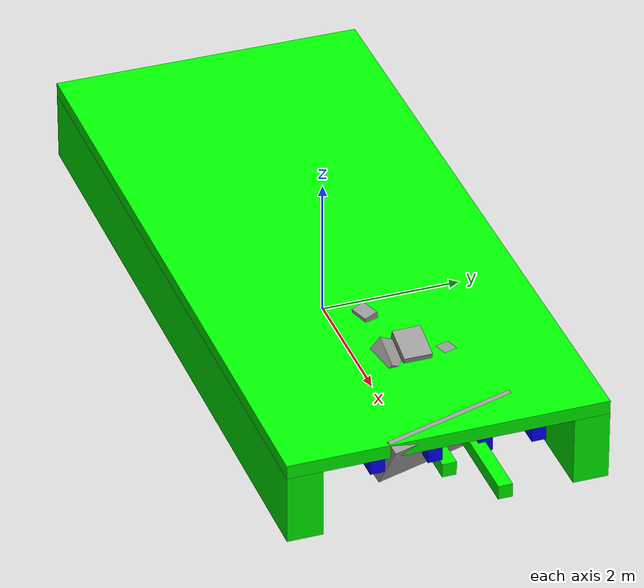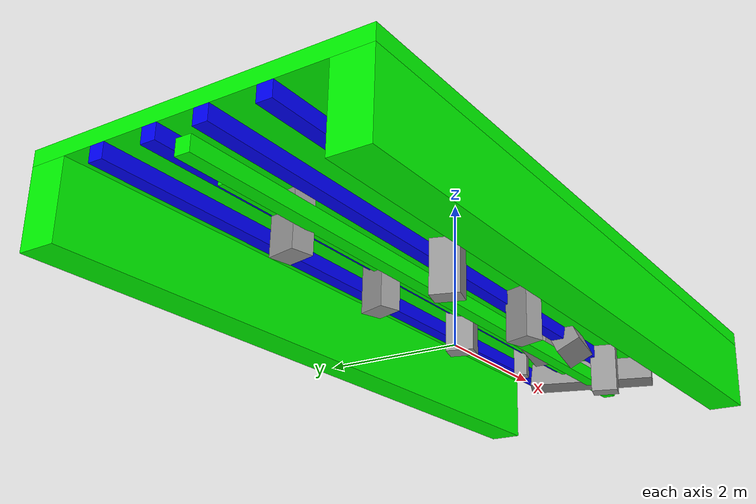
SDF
<?xml version='1.0'?>
<sdf version='1.7'>
  <model name='very_low_portal_with_obstacles'>
    <link name='link_0'>
      <inertial>
        <mass>1</mass>
        <inertia>
          <ixx>0.166667</ixx>
          <ixy>0</ixy>
          <ixz>0</ixz>
          <iyy>0.166667</iyy>
          <iyz>0</iyz>
          <izz>0.166667</izz>
        </inertia>
        <pose>0 0 0 0 -0 0</pose>
      </inertial>
      <pose>0 0 0 0 -0 0</pose>
      <gravity>1</gravity>
      <self_collide>0</self_collide>
      <kinematic>0</kinematic>
      <enable_wind>0</enable_wind>
      <visual name='ModelPreview_1::link_0::visual_9'>
        <pose>-1 0.5 0.8 0 -0 0</pose>
        <geometry>
          <box>
            <size>0 0 0</size>
          </box>
        </geometry>
        <material>
          <lighting>1</lighting>
          <script>
            <uri>file://media/materials/scripts/gazebo.material</uri>
            <name>Gazebo/Grey</name>
          </script>
          <shader type='pixel'>
            <normal_map>__default__</normal_map>
          </shader>
          <ambient>0 1 0 1</ambient>
          <diffuse>0.7 0.7 0.7 1</diffuse>
          <specular>0.01 0.01 0.01 1</specular>
          <emissive>0 0 0 1</emissive>
        </material>
        <transparency>0</transparency>
        <cast_shadows>1</cast_shadows>
      </visual>
      <visual name='ModelPreview_1::link_0::visual_8'>
        <pose>1 0.4 0.85 0 -0 0</pose>
        <geometry>
          <box>
            <size>10 0.2 0.2</size>
          </box>
        </geometry>
        <material>
          <lighting>1</lighting>
          <script>
            <uri>file://media/materials/scripts/gazebo.material</uri>
            <name>Gazebo/Grey</name>
          </script>
          <shader type='pixel'>
            <normal_map>__default__</normal_map>
          </shader>
          <ambient>0 1 0 1</ambient>
          <diffuse>0.7 0.7 0.7 1</diffuse>
          <specular>0.01 0.01 0.01 1</specular>
          <emissive>0 0 0 1</emissive>
        </material>
        <transparency>0</transparency>
        <cast_shadows>1</cast_shadows>
      </visual>
      <visual name='ModelPreview_1::link_0::visual_7'>
        <pose>0 0 0.625 0 -0 0</pose>
        <geometry>
          <box>
            <size>10 0.2 0.2</size>
          </box>
        </geometry>
        <material>
          <lighting>1</lighting>
          <script>
            <uri>file://media/materials/scripts/gazebo.material</uri>
            <name>Gazebo/Grey</name>
          </script>
          <shader type='pixel'>
            <normal_map>__default__</normal_map>
          </shader>
          <ambient>0 1 0 1</ambient>
          <diffuse>0.7 0.7 0.7 1</diffuse>
          <specular>0.01 0.01 0.01 1</specular>
          <emissive>0 0 0 1</emissive>
        </material>
        <transparency>0</transparency>
        <cast_shadows>1</cast_shadows>
      </visual>
      <visual name='visual'>
        <pose>0 2 0.5 0 -0 0</pose>
        <geometry>
          <box>
            <size>10 0.5 1</size>
          </box>
        </geometry>
        <material>
          <lighting>1</lighting>
          <script>
            <uri>file://media/materials/scripts/gazebo.material</uri>
            <name>Gazebo/Grey</name>
          </script>
          <shader type='pixel'>
            <normal_map>__default__</normal_map>
          </shader>
          <ambient>0 1 0 1</ambient>
          <diffuse>0.7 0.7 0.7 1</diffuse>
          <specular>0.01 0.01 0.01 1</specular>
          <emissive>0 0 0 1</emissive>
        </material>
        <transparency>0</transparency>
        <cast_shadows>1</cast_shadows>
      </visual>
      <visual name='ModelPreview_2::link_0::visual_7'>
        <pose>0 0.5 0.9 0 -0 0</pose>
        <geometry>
          <box>
            <size>10 0.2 0.2</size>
          </box>
        </geometry>
        <material>
          <lighting>1</lighting>
          <script>
            <uri>file://media/materials/scripts/gazebo.material</uri>
            <name>Gazebo/Grey</name>
          </script>
          <shader type='pixel'>
            <normal_map>__default__</normal_map>
          </shader>
          <ambient>0 0 1 1</ambient>
          <diffuse>0.7 0.7 0.7 1</diffuse>
          <specular>0.01 0.01 0.01 1</specular>
          <emissive>0 0 0 1</emissive>
        </material>
        <transparency>0</transparency>
        <cast_shadows>1</cast_shadows>
      </visual>
      <visual name='ModelPreview_2::link_0::visual_3'>
        <pose>0 1.25 0.9 0 -0 0</pose>
        <geometry>
          <box>
            <size>10 0.2 0.2</size>
          </box>
        </geometry>
        <material>
          <lighting>1</lighting>
          <script>
            <uri>file://media/materials/scripts/gazebo.material</uri>
            <name>Gazebo/Grey</name>
          </script>
          <shader type='pixel'>
            <normal_map>__default__</normal_map>
          </shader>
          <ambient>0 0 1 1</ambient>
          <diffuse>0.7 0.7 0.7 1</diffuse>
          <specular>0.01 0.01 0.01 1</specular>
          <emissive>0 0 0 1</emissive>
        </material>
        <transparency>0</transparency>
        <cast_shadows>1</cast_shadows>
      </visual>
      <visual name='ModelPreview_2::link_0::visual_8'>
        <pose>0 -0.2 0.9 0 -0 0</pose>
        <geometry>
          <box>
            <size>10 0.2 0.2</size>
          </box>
        </geometry>
        <material>
          <lighting>1</lighting>
          <script>
            <uri>file://media/materials/scripts/gazebo.material</uri>
            <name>Gazebo/Grey</name>
          </script>
          <shader type='pixel'>
            <normal_map>__default__</normal_map>
          </shader>
          <ambient>0 0 1 1</ambient>
          <diffuse>0.7 0.7 0.7 1</diffuse>
          <specular>0.01 0.01 0.01 1</specular>
          <emissive>0 0 0 1</emissive>
        </material>
        <transparency>0</transparency>
        <cast_shadows>1</cast_shadows>
      </visual>
      <visual name='ModelPreview_2::link_0::visual_9'>
        <pose>0 -1 0.9 0 -0 0</pose>
        <geometry>
          <box>
            <size>10 0.2 0.2</size>
          </box>
        </geometry>
        <material>
          <lighting>1</lighting>
          <script>
            <uri>file://media/materials/scripts/gazebo.material</uri>
            <name>Gazebo/Grey</name>
          </script>
          <shader type='pixel'>
            <normal_map>__default__</normal_map>
          </shader>
          <ambient>0 0 1 1</ambient>
          <diffuse>0.7 0.7 0.7 1</diffuse>
          <specular>0.01 0.01 0.01 1</specular>
          <emissive>0 0 0 1</emissive>
        </material>
        <transparency>0</transparency>
        <cast_shadows>1</cast_shadows>
      </visual>
      <visual name='ModelPreview_2::link_0::visual_2'>
        <pose>0 0 1.1 0 -0 0</pose>
        <geometry>
          <box>
            <size>10 4.5 0.2</size>
          </box>
        </geometry>
        <material>
          <lighting>1</lighting>
          <script>
            <uri>file://media/materials/scripts/gazebo.material</uri>
            <name>Gazebo/Grey</name>
          </script>
          <shader type='pixel'>
            <normal_map>__default__</normal_map>
          </shader>
          <ambient>0 1 0 1</ambient>
          <diffuse>0.7 0.7 0.7 1</diffuse>
          <specular>0.01 0.01 0.01 1</specular>
          <emissive>0 0 0 1</emissive>
        </material>
        <transparency>0</transparency>
        <cast_shadows>1</cast_shadows>
      </visual>
      <visual name='ModelPreview_2::link_0::visual_1'>
        <pose>0 -2 0.5 0 -0 0</pose>
        <geometry>
          <box>
            <size>10 0.5 1</size>
          </box>
        </geometry>
        <material>
          <lighting>1</lighting>
          <script>
            <uri>file://media/materials/scripts/gazebo.material</uri>
            <name>Gazebo/Grey</name>
          </script>
          <shader type='pixel'>
            <normal_map>__default__</normal_map>
          </shader>
          <ambient>0 1 0 1</ambient>
          <diffuse>0.7 0.7 0.7 1</diffuse>
          <specular>0.01 0.01 0.01 1</specular>
          <emissive>0 0 0 1</emissive>
        </material>
        <transparency>0</transparency>
        <cast_shadows>1</cast_shadows>
      </visual>
    </link>
    <link name='link_0_0'>
      <inertial>
        <mass>1</mass>
        <inertia>
          <ixx>0.166667</ixx>
          <ixy>0</ixy>
          <ixz>0</ixz>
          <iyy>0.166667</iyy>
          <iyz>0</iyz>
          <izz>0.166667</izz>
        </inertia>
        <pose>0 0 0 0 -0 0</pose>
      </inertial>
      <pose>-1 -0.5 0 0 -0 0.3</pose>
      <gravity>1</gravity>
      <self_collide>0</self_collide>
      <kinematic>0</kinematic>
      <enable_wind>0</enable_wind>
      <visual name='visual'>
        <pose>0 0 0.625 0 -0 0</pose>
        <geometry>
          <box>
            <size>0.3 0.4 0.75</size>
          </box>
        </geometry>
        <material>
          <lighting>1</lighting>
          <script>
            <uri>file://media/materials/scripts/gazebo.material</uri>
            <name>Gazebo/Grey</name>
          </script>
          <shader type='pixel'>
            <normal_map>__default__</normal_map>
          </shader>
          <ambient>0.3 0.3 0.3 1</ambient>
          <diffuse>0.7 0.7 0.7 1</diffuse>
          <specular>0.01 0.01 0.01 1</specular>
          <emissive>0 0 0 1</emissive>
        </material>
        <transparency>0</transparency>
        <cast_shadows>1</cast_shadows>
      </visual>
    </link>
    <link name='link_0_0_clone'>
      <inertial>
        <mass>1</mass>
        <inertia>
          <ixx>0.166667</ixx>
          <ixy>0</ixy>
          <ixz>0</ixz>
          <iyy>0.166667</iyy>
          <iyz>0</iyz>
          <izz>0.166667</izz>
        </inertia>
        <pose>0 0 0 0 -0 0</pose>
      </inertial>
      <pose>-1 0.5 0 0 0 -0.3</pose>
      <gravity>0</gravity>
      <self_collide>0</self_collide>
      <kinematic>0</kinematic>
      <enable_wind>0</enable_wind>
      <visual name='visual_0'>
        <pose>0 0 0.625 0 -0 0</pose>
        <geometry>
          <box>
            <size>0.3 0.4 0.75</size>
          </box>
        </geometry>
        <material>
          <lighting>1</lighting>
          <script>
            <uri>file://media/materials/scripts/gazebo.material</uri>
            <name>Gazebo/Grey</name>
          </script>
          <shader type='pixel'>
            <normal_map>__default__</normal_map>
          </shader>
          <ambient>0.3 0.3 0.3 1</ambient>
          <diffuse>0.7 0.7 0.7 1</diffuse>
          <specular>0.01 0.01 0.01 1</specular>
          <emissive>0 0 0 1</emissive>
        </material>
        <transparency>0</transparency>
        <cast_shadows>1</cast_shadows>
      </visual>
    </link>
    <link name='link_0_0_clone_0'>
      <inertial>
        <mass>1</mass>
        <inertia>
          <ixx>0.166667</ixx>
          <ixy>0</ixy>
          <ixz>0</ixz>
          <iyy>0.166667</iyy>
          <iyz>0</iyz>
          <izz>0.166667</izz>
        </inertia>
        <pose>0 0 0 0 -0 0</pose>
      </inertial>
      <pose>1.97204 0.067583 0.3 0.2 -0 0.3</pose>
      <gravity>1</gravity>
      <self_collide>0</self_collide>
      <kinematic>0</kinematic>
      <enable_wind>0</enable_wind>
      <visual name='visual_0'>
        <pose>0 0 0.625 0 -0 0</pose>
        <geometry>
          <box>
            <size>0.3 0.2 0.75</size>
          </box>
        </geometry>
        <material>
          <lighting>1</lighting>
          <script>
            <uri>file://media/materials/scripts/gazebo.material</uri>
            <name>Gazebo/Grey</name>
          </script>
          <shader type='pixel'>
            <normal_map>__default__</normal_map>
          </shader>
          <ambient>0.3 0.3 0.3 1</ambient>
          <diffuse>0.7 0.7 0.7 1</diffuse>
          <specular>0.01 0.01 0.01 1</specular>
          <emissive>0 0 0 1</emissive>
        </material>
        <transparency>0</transparency>
        <cast_shadows>1</cast_shadows>
      </visual>
    </link>
    <link name='link_0_0_clone_0_clone'>
      <inertial>
        <mass>1</mass>
        <inertia>
          <ixx>0.166667</ixx>
          <ixy>0</ixy>
          <ixz>0</ixz>
          <iyy>0.166667</iyy>
          <iyz>0</iyz>
          <izz>0.166667</izz>
        </inertia>
        <pose>0 0 0 0 -0 0</pose>
      </inertial>
      <pose>2.76815 0.185748 0.4 0 0.3 0</pose>
      <gravity>1</gravity>
      <self_collide>0</self_collide>
      <kinematic>0</kinematic>
      <enable_wind>0</enable_wind>
      <visual name='visual_0'>
        <pose>0 0 0.625 0 -0 0</pose>
        <geometry>
          <box>
            <size>0.5 0.4 0.75</size>
          </box>
        </geometry>
        <material>
          <lighting>1</lighting>
          <script>
            <uri>file://media/materials/scripts/gazebo.material</uri>
            <name>Gazebo/Grey</name>
          </script>
          <shader type='pixel'>
            <normal_map>__default__</normal_map>
          </shader>
          <ambient>0.3 0.3 0.3 1</ambient>
          <diffuse>0.7 0.7 0.7 1</diffuse>
          <specular>0.01 0.01 0.01 1</specular>
          <emissive>0 0 0 1</emissive>
        </material>
        <transparency>0</transparency>
        <cast_shadows>1</cast_shadows>
      </visual>
    </link>
    <link name='link_0_0_clone_0_clone_clone'>
      <inertial>
        <mass>1</mass>
        <inertia>
          <ixx>0.166667</ixx>
          <ixy>0</ixy>
          <ixz>0</ixz>
          <iyy>0.166667</iyy>
          <iyz>0</iyz>
          <izz>0.166667</izz>
        </inertia>
        <pose>0 0 0 0 -0 0</pose>
      </inertial>
      <pose>2.81772 -0.505674 0.4 -0.5 0.3 0</pose>
      <gravity>1</gravity>
      <self_collide>0</self_collide>
      <kinematic>0</kinematic>
      <enable_wind>0</enable_wind>
      <visual name='visual_0'>
        <pose>0 0 0.625 0 -0 0</pose>
        <geometry>
          <box>
            <size>0.5 0.4 0.75</size>
          </box>
        </geometry>
        <material>
          <lighting>1</lighting>
          <script>
            <uri>file://media/materials/scripts/gazebo.material</uri>
            <name>Gazebo/Grey</name>
          </script>
          <shader type='pixel'>
            <normal_map>__default__</normal_map>
          </shader>
          <ambient>0.3 0.3 0.3 1</ambient>
          <diffuse>0.7 0.7 0.7 1</diffuse>
          <specular>0.01 0.01 0.01 1</specular>
          <emissive>0 0 0 1</emissive>
        </material>
        <transparency>0</transparency>
        <cast_shadows>1</cast_shadows>
      </visual>
    </link>
    <link name='link_0_0_clone_clone'>
      <inertial>
        <mass>1</mass>
        <inertia>
          <ixx>0.166667</ixx>
          <ixy>0</ixy>
          <ixz>0</ixz>
          <iyy>0.166667</iyy>
          <iyz>0</iyz>
          <izz>0.166667</izz>
        </inertia>
        <pose>0 0 0 0 -0 0</pose>
      </inertial>
      <pose>-3 0.3 0 0 0 -0.2</pose>
      <gravity>1</gravity>
      <self_collide>0</self_collide>
      <kinematic>0</kinematic>
      <enable_wind>0</enable_wind>
      <visual name='visual_0'>
        <pose>0 0 0.625 0 -0 0</pose>
        <geometry>
          <box>
            <size>0.3 0.4 0.75</size>
          </box>
        </geometry>
        <material>
          <lighting>1</lighting>
          <script>
            <uri>file://media/materials/scripts/gazebo.material</uri>
            <name>Gazebo/Grey</name>
          </script>
          <shader type='pixel'>
            <normal_map>__default__</normal_map>
          </shader>
          <ambient>0.3 0.3 0.3 1</ambient>
          <diffuse>0.7 0.7 0.7 1</diffuse>
          <specular>0.01 0.01 0.01 1</specular>
          <emissive>0 0 0 1</emissive>
        </material>
        <transparency>0</transparency>
        <cast_shadows>1</cast_shadows>
      </visual>
    </link>
    <link name='link_0_0_clone_clone_0'>
      <inertial>
        <mass>1</mass>
        <inertia>
          <ixx>0.166667</ixx>
          <ixy>0</ixy>
          <ixz>0</ixz>
          <iyy>0.166667</iyy>
          <iyz>0</iyz>
          <izz>0.166667</izz>
        </inertia>
        <pose>0 0 0 0 -0 0</pose>
      </inertial>
      <pose>1 0.5 0 0 -0 0.3</pose>
      <gravity>1</gravity>
      <self_collide>0</self_collide>
      <kinematic>0</kinematic>
      <enable_wind>0</enable_wind>
      <visual name='visual_0'>
        <pose>0 0 0.625 0 -0 0</pose>
        <geometry>
          <box>
            <size>0.3 0.4 0.75</size>
          </box>
        </geometry>
        <material>
          <lighting>1</lighting>
          <script>
            <uri>file://media/materials/scripts/gazebo.material</uri>
            <name>Gazebo/Grey</name>
          </script>
          <shader type='pixel'>
            <normal_map>__default__</normal_map>
          </shader>
          <ambient>0.3 0.3 0.3 1</ambient>
          <diffuse>0.7 0.7 0.7 1</diffuse>
          <specular>0.01 0.01 0.01 1</specular>
          <emissive>0 0 0 1</emissive>
        </material>
        <transparency>0</transparency>
        <cast_shadows>1</cast_shadows>
      </visual>
    </link>
    <link name='link_0_0_clone_clone_0_clone'>
      <inertial>
        <mass>1</mass>
        <inertia>
          <ixx>0.166667</ixx>
          <ixy>0</ixy>
          <ixz>0</ixz>
          <iyy>0.166667</iyy>
          <iyz>0</iyz>
          <izz>0.166667</izz>
        </inertia>
        <pose>0 0 0 0 -0 0</pose>
      </inertial>
      <pose>1 -0.5 0 0 0 -0.3</pose>
      <gravity>1</gravity>
      <self_collide>0</self_collide>
      <kinematic>0</kinematic>
      <enable_wind>0</enable_wind>
      <visual name='visual_0'>
        <pose>0 0 0.625 0 -0 0</pose>
        <geometry>
          <box>
            <size>0.3 0.4 0.75</size>
          </box>
        </geometry>
        <material>
          <lighting>1</lighting>
          <script>
            <uri>file://media/materials/scripts/gazebo.material</uri>
            <name>Gazebo/Grey</name>
          </script>
          <shader type='pixel'>
            <normal_map>__default__</normal_map>
          </shader>
          <ambient>0.3 0.3 0.3 1</ambient>
          <diffuse>0.7 0.7 0.7 1</diffuse>
          <specular>0.01 0.01 0.01 1</specular>
          <emissive>0 0 0 1</emissive>
        </material>
        <transparency>0</transparency>
        <cast_shadows>1</cast_shadows>
      </visual>
    </link>
    <link name='link_0_0_clone_clone_0_clone_0'>
      <inertial>
        <mass>1</mass>
        <inertia>
          <ixx>0.166667</ixx>
          <ixy>0</ixy>
          <ixz>0</ixz>
          <iyy>0.166667</iyy>
          <iyz>0</iyz>
          <izz>0.166667</izz>
        </inertia>
        <pose>0 0 0 0 -0 0</pose>
      </inertial>
      <pose>4 -0.380659 0 0 -0 0.3</pose>
      <gravity>1</gravity>
      <self_collide>0</self_collide>
      <kinematic>0</kinematic>
      <enable_wind>0</enable_wind>
      <visual name='visual_0'>
        <pose>0 0 0.625 0 -0 0</pose>
        <geometry>
          <box>
            <size>0.3 0.4 0.75</size>
          </box>
        </geometry>
        <material>
          <lighting>1</lighting>
          <script>
            <uri>file://media/materials/scripts/gazebo.material</uri>
            <name>Gazebo/Grey</name>
          </script>
          <shader type='pixel'>
            <normal_map>__default__</normal_map>
          </shader>
          <ambient>0.3 0.3 0.3 1</ambient>
          <diffuse>0.7 0.7 0.7 1</diffuse>
          <specular>0.01 0.01 0.01 1</specular>
          <emissive>0 0 0 1</emissive>
        </material>
        <transparency>0</transparency>
        <cast_shadows>1</cast_shadows>
      </visual>
    </link>
    <link name='link_0_0_clone_clone_0_clone_0_clone'>
      <inertial>
        <mass>1</mass>
        <inertia>
          <ixx>0.166667</ixx>
          <ixy>0</ixy>
          <ixz>0</ixz>
          <iyy>0.166667</iyy>
          <iyz>0</iyz>
          <izz>0.166667</izz>
        </inertia>
        <pose>0 0 0 0 -0 0</pose>
      </inertial>
      <pose>3.09982 0.65434 0.2 0 -0 0.3</pose>
      <gravity>1</gravity>
      <self_collide>0</self_collide>
      <kinematic>0</kinematic>
      <enable_wind>0</enable_wind>
      <visual name='visual_0'>
        <pose>0 0 0.625 0 -0 0</pose>
        <geometry>
          <box>
            <size>0.2 0.2 0.75</size>
          </box>
        </geometry>
        <material>
          <lighting>1</lighting>
          <script>
            <uri>file://media/materials/scripts/gazebo.material</uri>
            <name>Gazebo/Grey</name>
          </script>
          <shader type='pixel'>
            <normal_map>__default__</normal_map>
          </shader>
          <ambient>0.3 0.3 0.3 1</ambient>
          <diffuse>0.7 0.7 0.7 1</diffuse>
          <specular>0.01 0.01 0.01 1</specular>
          <emissive>0 0 0 1</emissive>
        </material>
        <transparency>0</transparency>
        <cast_shadows>1</cast_shadows>
      </visual>
    </link>
    <link name='link_0_0_clone_clone_0_clone_0_clone_0'>
      <inertial>
        <mass>1</mass>
        <inertia>
          <ixx>0.166667</ixx>
          <ixy>0</ixy>
          <ixz>0</ixz>
          <iyy>0.166667</iyy>
          <iyz>0</iyz>
          <izz>0.166667</izz>
        </inertia>
        <pose>0 0 0 0 -0 0</pose>
      </inertial>
      <pose>4.27032 -0.000745 0.3 0 0.5 0.3</pose>
      <gravity>1</gravity>
      <self_collide>0</self_collide>
      <kinematic>0</kinematic>
      <enable_wind>0</enable_wind>
      <visual name='visual_0'>
        <pose>0 0 0.625 0 -0 0</pose>
        <geometry>
          <box>
            <size>0.2 2 0.75</size>
          </box>
        </geometry>
        <material>
          <lighting>1</lighting>
          <script>
            <uri>file://media/materials/scripts/gazebo.material</uri>
            <name>Gazebo/Grey</name>
          </script>
          <shader type='pixel'>
            <normal_map>__default__</normal_map>
          </shader>
          <ambient>0.3 0.3 0.3 1</ambient>
          <diffuse>0.7 0.7 0.7 1</diffuse>
          <specular>0.01 0.01 0.01 1</specular>
          <emissive>0 0 0 1</emissive>
        </material>
        <transparency>0</transparency>
        <cast_shadows>1</cast_shadows>
      </visual>
    </link>
    <static>1</static>
    <allow_auto_disable>1</allow_auto_disable>
  </model>
</sdf>
